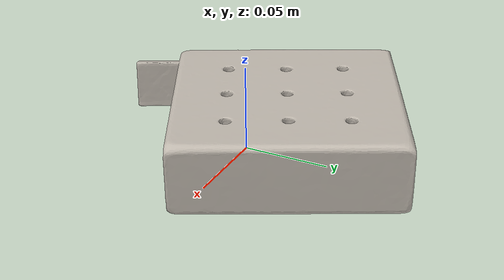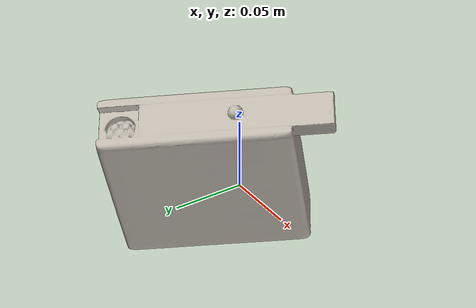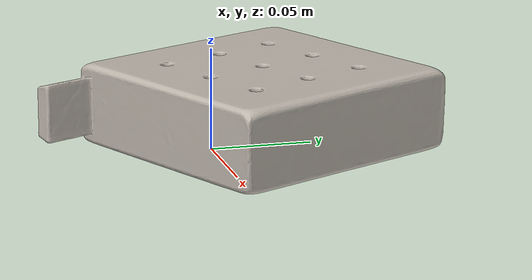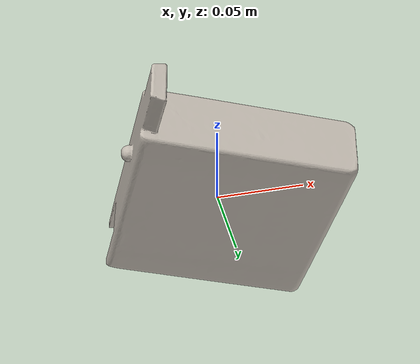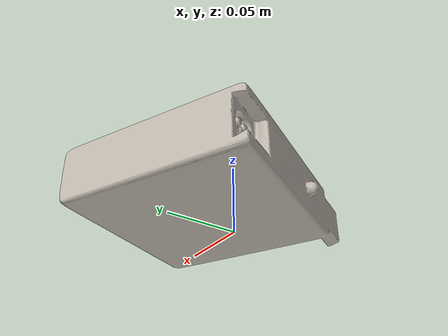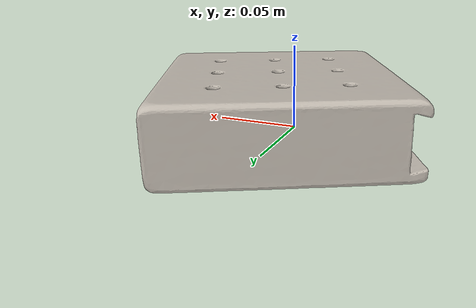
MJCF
<mujoco model="nine_hole_peg">
  <compiler angle="radian" meshdir="assets" texturedir="assets"/>
    <default>
        <default class="ycb_col">
            <geom contype="1" conaffinity="1" group="3" rgba=".4 .5 .6 1"/>
        </default>
        <default class="ycb_viz">
            <geom contype="0" conaffinity="0" type="mesh" mass="0"/>
        </default>
    </default>
  <asset>
    <texture type="2d" name="nine_hole_peg_test_tex" file="texture_map.png"/>
    <material name="nine_hole_peg_test_mat" texture="nine_hole_peg_test_tex" specular="0.5" shininess="0.5"/>
    <mesh file="textured.obj" name="nine_hole_peg_test"/>
    <mesh file="textured_collision_0.obj" name="nine_hole_peg_test_collision_0"/>
    <mesh file="textured_collision_1.obj" name="nine_hole_peg_test_collision_1"/>
  </asset>
  <worldbody>
      <geom material="nine_hole_peg_test_mat" mesh="nine_hole_peg_test" class="ycb_viz"/>
      <geom mesh="nine_hole_peg_test_collision_0" class="ycb_col" conaffinity="1" condim="4" friction="0.1 0.1 0.1" mass="0.022392242834641075" rgba="1 1 1 1" solimp="0.99 0.99 0.01" solref=".001 0.1" type="mesh" group="3"/>
      <geom mesh="nine_hole_peg_test_collision_1" class="ycb_col" conaffinity="1" condim="4" friction="0.1 0.1 0.1" mass="1.4126077571653588" rgba="1 1 1 1" solimp="0.99 0.99 0.01" solref=".001 0.1" type="mesh" group="3"/>
  </worldbody>
</mujoco>
